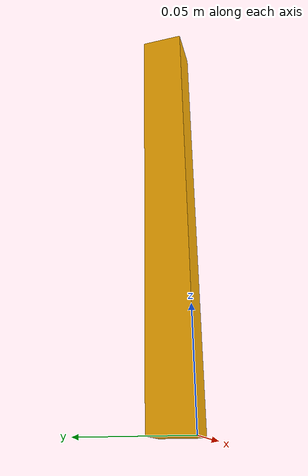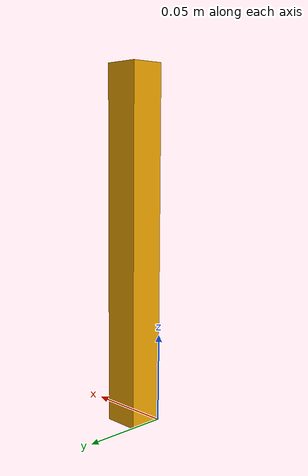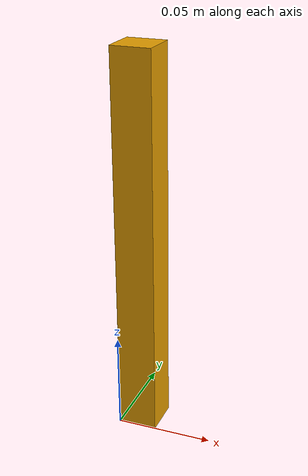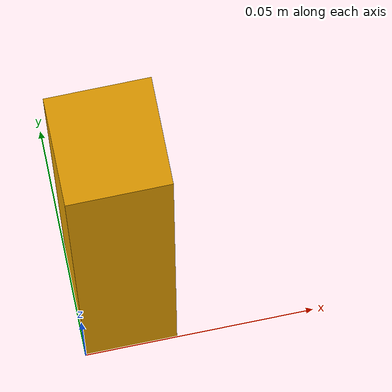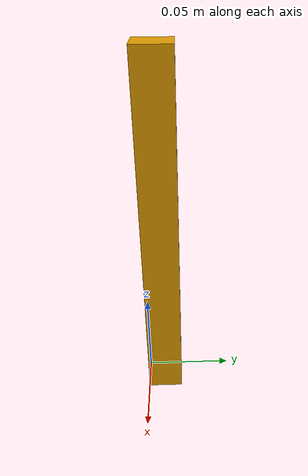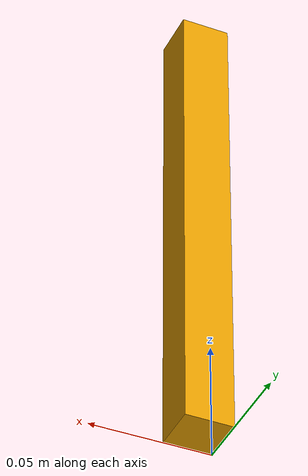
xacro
<?xml version="1.0" ?>
<robot
  name="tool">
   <link name="tool">
        <visual>
            <origin rpy="0 0 0" xyz="0.01 0.01 0.1"/>
            <geometry>
                <box size = "0.02 0.02 0.2"/>
            </geometry>
        </visual>
        <collision>
          <origin xyz="0 0 0" rpy="0 0 0.04"/>
            <geometry>
                 <box size = "0.04 0.04 0.1"/>
            </geometry>
        </collision>

        <inertial>
         <mass value="0.1"/>
         <inertia ixx="0.0002" ixy="0.0" ixz="0.0" iyy="0.0003" iyz="0.0" izz="0.0003"/>
        </inertial>
    </link>
</robot>
